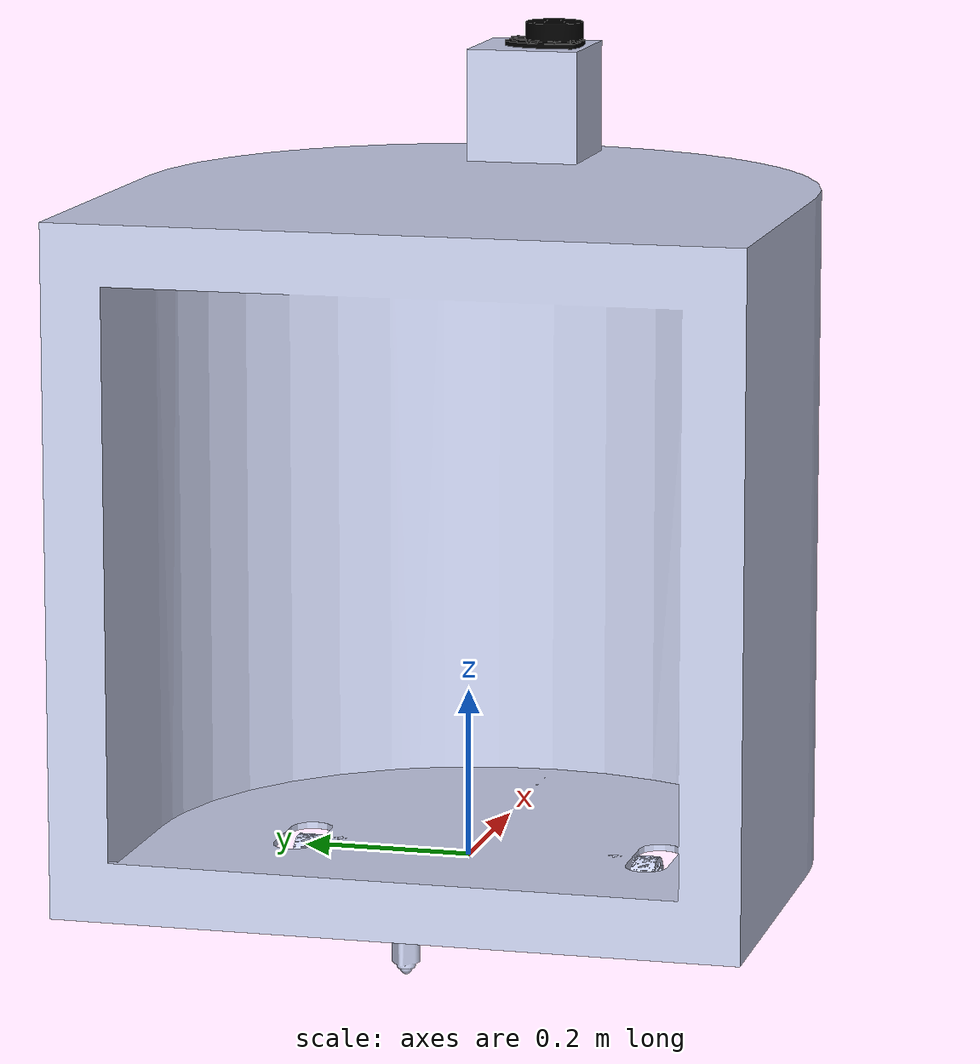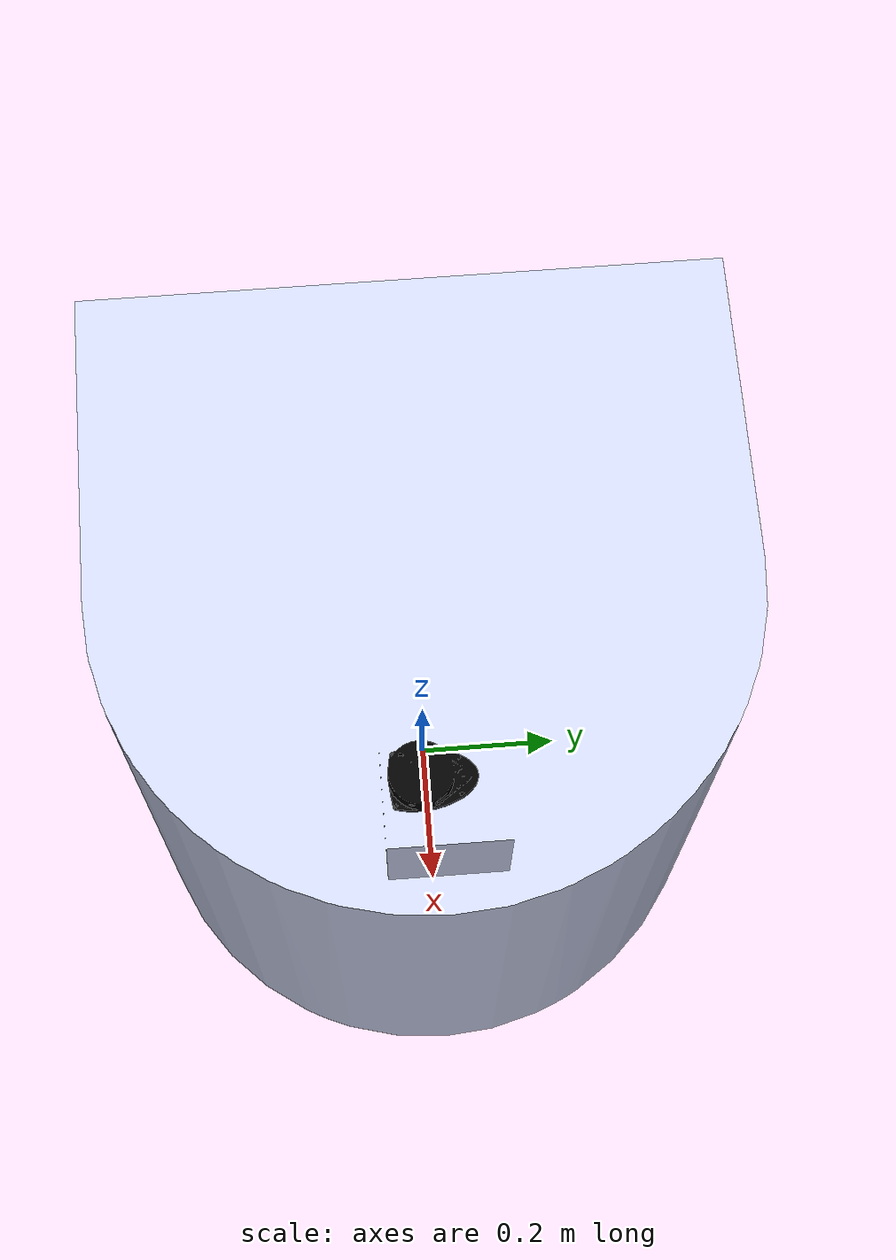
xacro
<?xml version="1.0" encoding="utf-8"?>
<robot
  name="autonomous_description" xmlns:xacro="http://www.ros.org/wiki/xacro">

     <xacro:include filename="$(find autonomous_description)/urdf/autonomous.gazebo"/>

  <link name="robot_footprint">
     </link>

      <joint name="robot_footprint_joint" type="fixed">
        <parent link="robot_footprint"/>
        <child link="base_link"/>
     </joint>

  <link name="base_link">
    <inertial>
      <origin
        xyz="0.070643 1.3052E-06 0.41041"
        rpy="0 0 0" />
      <mass
        value="2" />
      <inertia
        ixx="0.52196"
        ixy="-8.6708E-07"
        ixz="-0.018081"
        iyy="0.47673"
        iyz="-4.7129E-07"
        izz="0.56044" />
    </inertial>
    <visual>
      <origin
        xyz="0 0 0"
        rpy="0 0 0" />
      <geometry>
        <mesh
          filename="package://autonomous_description/meshes/base_link.STL" />
      </geometry>
      <material
        name="">
        <color
          rgba="0.79216 0.81961 0.93333 1" />
      </material>
    </visual>
    <collision>
      <origin
        xyz="0 0 0"
        rpy="0 0 0" />
      <geometry>
        <mesh
          filename="package://autonomous_description/meshes/base_link.STL" />
      </geometry>
    </collision>
  </link>
  <link
    name="right_wheel">
    <inertial>
      <origin
        xyz="0.000849211644423475 8.44427452529883E-05 -0.00581677454473639"
        rpy="0 0 0" />
      <mass
        value="0.0419257722057724" />
      <inertia
        ixx="1.84079315534531E-05"
        ixy="3.18478335582777E-09"
        ixz="4.29928342206566E-10"
        iyy="1.83735279818833E-05"
        iyz="3.19805573729874E-11"
        izz="3.09191078330396E-05" />
    </inertial>
    <visual>
      <origin
        xyz="0 0 0"
        rpy="0 0 0" />
      <geometry>
        <mesh
          filename="package://autonomous_description/meshes/right_wheel.STL" />
      </geometry>
      <material
        name="">
        <color
          rgba="0.792156862745098 0.819607843137255 0.933333333333333 1" />
      </material>
    </visual>
    <collision>
      <origin
        xyz="0 0 0"
        rpy="0 0 0" />
      <geometry>
        <mesh
          filename="package://autonomous_description/meshes/right_wheel.STL" />
      </geometry>
    </collision>
  </link>
  <joint
    name="right_wheel_joint"
    type="continuous">
    <origin
      xyz="0.037421 -0.21271 -0.031496"
      rpy="1.5708 0 0" />
    <parent
      link="base_link" />
    <child
      link="right_wheel" />
    <axis
      xyz="0 0 1" />
  </joint>
  <link
    name="left_wheel">
    <inertial>
      <origin
        xyz="0.000532019623028374 0.000667268016372846 0.00581677461199293"
        rpy="0 0 0" />
      <mass
        value="0.0419257713924698" />
      <inertia
        ixx="1.83865755819069E-05"
        ixy="1.69937308097638E-08"
        ixz="-2.60285881766015E-10"
        iyy="1.83948838562124E-05"
        iyz="-3.43624236291918E-10"
        izz="3.09191078313172E-05" />
    </inertial>
    <visual>
      <origin
        xyz="0 0 0"
        rpy="0 0 0" />
      <geometry>
        <mesh
          filename="package://autonomous_description/meshes/left_wheel.STL" />
      </geometry>
      <material
        name="">
        <color
          rgba="0.792156862745098 0.819607843137255 0.933333333333333 1" />
      </material>
    </visual>
    <collision>
      <origin
        xyz="0 0 0"
        rpy="0 0 0" />
      <geometry>
        <mesh
          filename="package://autonomous_description/meshes/left_wheel.STL" />
      </geometry>
    </collision>
  </link>
  <joint
    name="left_wheel_joint"
    type="continuous">
    <origin
      xyz="0.037421 0.21271 -0.031496"
      rpy="1.5708 0 0" />
    <parent
      link="base_link" />
    <child
      link="left_wheel" />
    <axis
      xyz="0 0 -1" />
  </joint>
  <link
    name="front_caster">
    <inertial>
      <origin
        xyz="0.364920614471431 -3.61791744896145E-08 -0.0292926152653551"
        rpy="0 0 0" />
      <mass
        value="0.0449095584767048" />
      <inertia
        ixx="1.04864711760672E-05"
        ixy="-4.58158519557603E-12"
        ixz="-3.31997115756724E-11"
        iyy="1.24673228843484E-05"
        iyz="1.36889444439375E-10"
        izz="7.05461418060001E-06" />
    </inertial>
    <visual>
      <origin
        xyz="0 0 0"
        rpy="0 0 0" />
      <geometry>
        <mesh
          filename="package://autonomous_description/meshes/front_caster.STL" />
      </geometry>
      <material
        name="">
        <color
          rgba="0.792156862745098 0.819607843137255 0.933333333333333 1" />
      </material>
    </visual>
    <collision>
      <origin
        xyz="0 0 0"
        rpy="0 0 0" />
      <geometry>
        <mesh
          filename="package://autonomous_description/meshes/front_caster.STL" />
      </geometry>
    </collision>
  </link>
  <joint
    name="front_caster_joint"
    type="fixed">
    <origin
      xyz="0 0 0"
      rpy="0 0 0" />
    <parent
      link="base_link" />
    <child
      link="front_caster" />
    <axis
      xyz="0 0 0" />
  </joint>
  <link
    name="back_caster">
    <inertial>
      <origin
        xyz="-0.290079385191494 -3.62088120597903E-08 -0.0292926149076425"
        rpy="0 0 0" />
      <mass
        value="0.0449095564631206" />
      <inertia
        ixx="1.04864709389871E-05"
        ixy="-4.58487662203697E-12"
        ixz="-3.29876795181964E-11"
        iyy="1.24673223451952E-05"
        iyz="1.36916699361049E-10"
        izz="7.05461385654605E-06" />
    </inertial>
    <visual>
      <origin
        xyz="0 0 0"
        rpy="0 0 0" />
      <geometry>
        <mesh
          filename="package://autonomous_description/meshes/back_caster.STL" />
      </geometry>
      <material
        name="">
        <color
          rgba="0.792156862745098 0.819607843137255 0.933333333333333 1" />
      </material>
    </visual>
    <collision>
      <origin
        xyz="0 0 0"
        rpy="0 0 0" />
      <geometry>
        <mesh
          filename="package://autonomous_description/meshes/back_caster.STL" />
      </geometry>
    </collision>
  </link>
  <joint
    name="back_caster_joint"
    type="fixed">
    <origin
      xyz="0 0 0"
      rpy="0 0 0" />
    <parent
      link="base_link" />
    <child
      link="back_caster" />
    <axis
      xyz="0 0 0" />
  </joint>

  <link
    name="lidar_Link">
    <inertial>
      <origin
        xyz="0 0 0"
        rpy="0 0 0" />
      <mass
        value="0" />
      <inertia
        ixx="0"
        ixy="0"
        ixz="0"
        iyy="0"
        iyz="0"
        izz="0" />
    </inertial>
    <visual>
      <origin
        xyz="0 0 0"
        rpy="0 0 0" />
      <geometry>
        <mesh
          filename="package://autonomous_description/meshes/lidar_Link.STL" />
      </geometry>
      <material
        name="">
        <color
          rgba="0 0 0 1" />
      </material>
    </visual>
    <collision>
      <origin
        xyz="0 0 0"
        rpy="0 0 0" />
      <geometry>
        <mesh
          filename="package://autonomous_description/meshes/lidar_Link.STL" />
      </geometry>
    </collision>
  </link>
  <joint
    name="lidar_Link_joint"
    type="fixed">
    <origin
      xyz="0 0 0"
      rpy="0 0 0" />
    <parent
      link="base_link" />
    <child
      link="lidar_Link" />
    <axis
      xyz="0 0 0" />
  </joint>
</robot>
